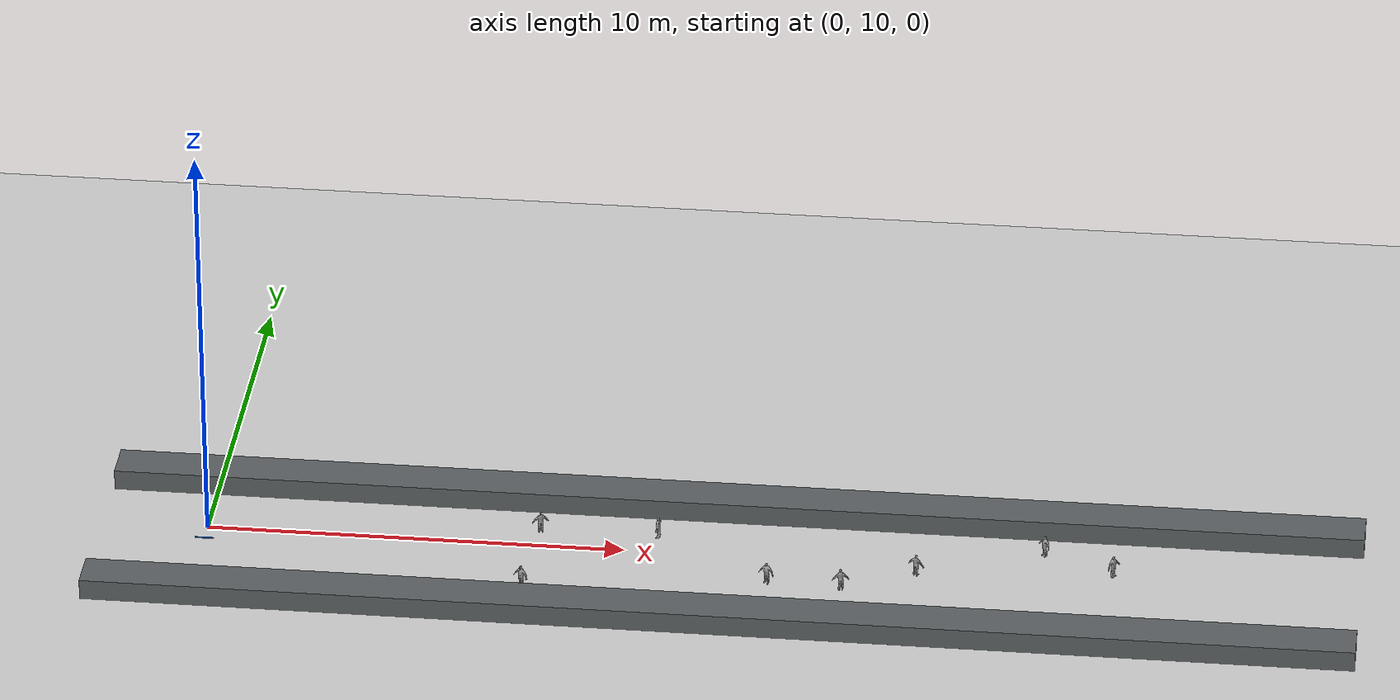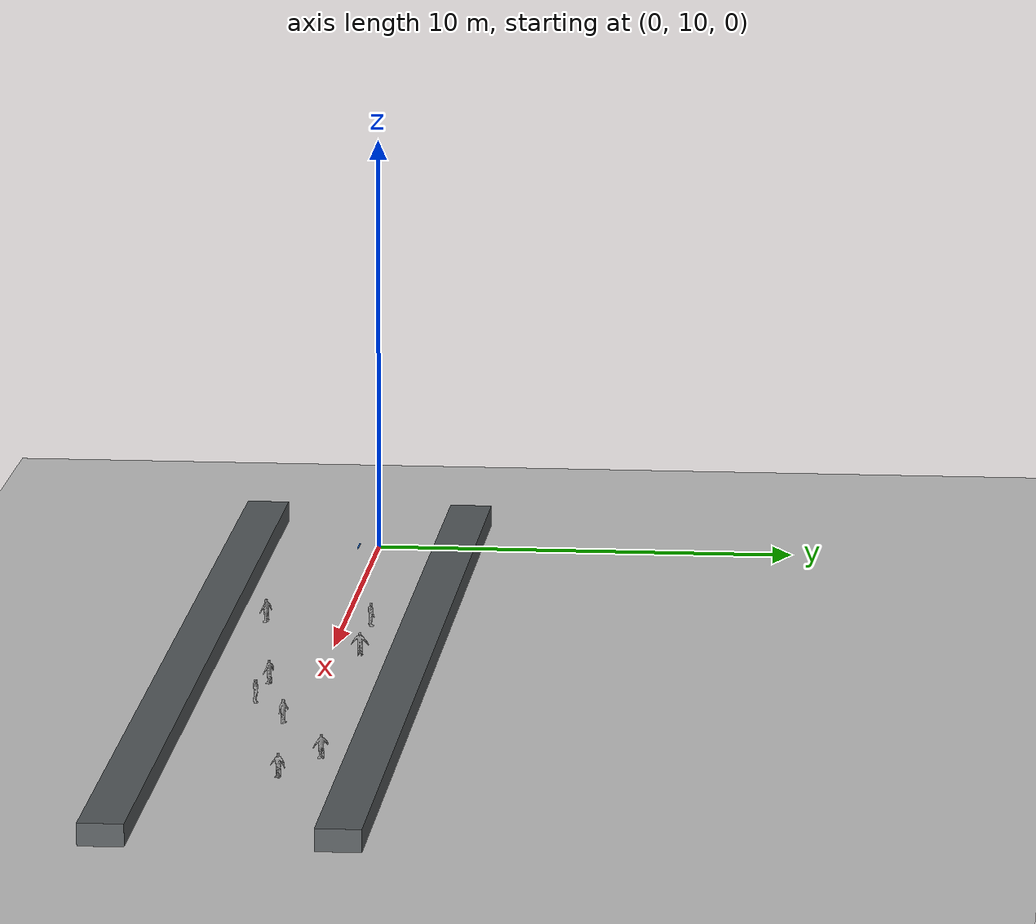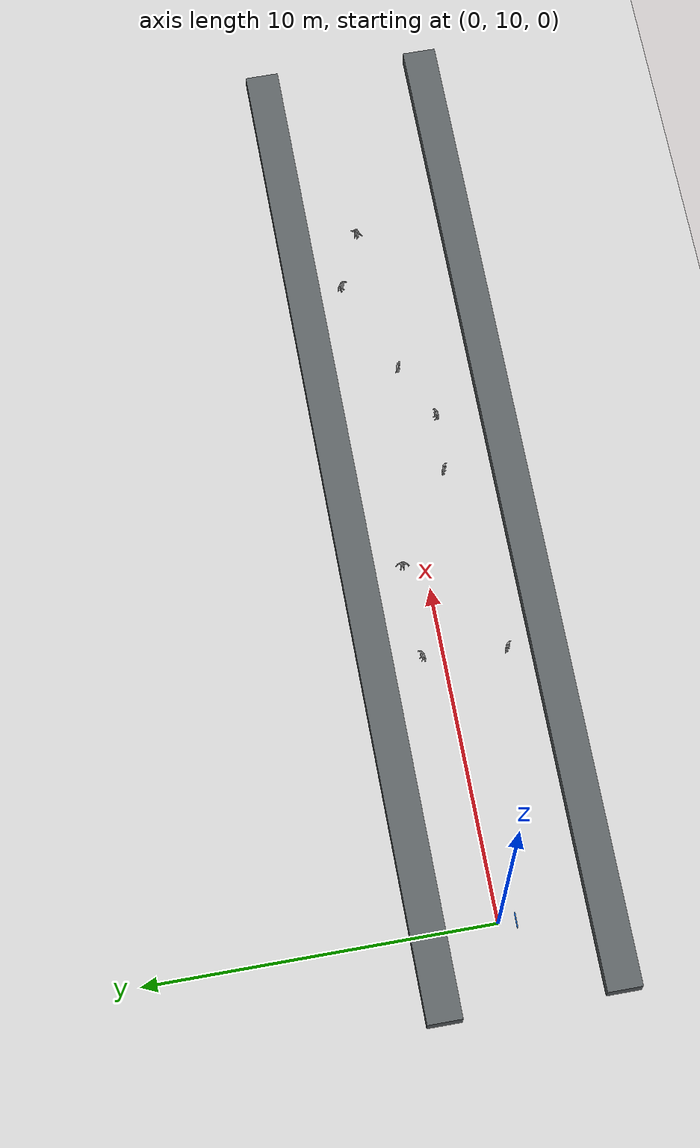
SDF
<?xml version="1.0" ?>
<sdf version="1.6">
  <world name="mppi_corridor_dynamic">
    <physics name="default_physics" type="ode">
      <max_step_size>0.001</max_step_size>
      <real_time_factor>1.0</real_time_factor>
      <real_time_update_rate>1000</real_time_update_rate>
    </physics>

    <plugin name="gazebo_ros_init" filename="libgazebo_ros_init.so">
      <publish_rate>100</publish_rate>
    </plugin>
    <plugin name="gazebo_ros_factory" filename="libgazebo_ros_factory.so"/>
    <plugin name="gazebo_ros_state" filename="libgazebo_ros_state.so"/>

    <scene>
      <ambient>0.45 0.45 0.45 1</ambient>
      <background>0.78 0.82 0.86 1</background>
      <shadows>true</shadows>
    </scene>

    <light name="sun" type="directional">
      <cast_shadows>true</cast_shadows>
      <pose>12.5 9.5 10 0 0 0</pose>
      <diffuse>0.8 0.8 0.8 1</diffuse>
      <specular>0.2 0.2 0.2 1</specular>
      <attenuation>
        <range>1000</range>
        <constant>0.9</constant>
        <linear>0.01</linear>
        <quadratic>0.001</quadratic>
      </attenuation>
      <direction>-0.5 0.2 -1</direction>
    </light>

    <model name="ground_plane">
      <static>true</static>
      <pose>13 9 0 0 0 0</pose>
      <link name="link">
        <collision name="collision">
          <geometry>
            <plane>
              <normal>0 0 1</normal>
              <size>30 8</size>
            </plane>
          </geometry>
          <surface>
            <friction>
              <ode>
                <mu>1.0</mu>
                <mu2>1.0</mu2>
              </ode>
            </friction>
          </surface>
        </collision>
        <visual name="visual">
          <geometry>
            <plane>
              <normal>0 0 1</normal>
              <size>30 8</size>
            </plane>
          </geometry>
          <material>
            <script>
              <uri>file://media/materials/scripts/gazebo.material</uri>
              <name>Gazebo/Grey</name>
            </script>
          </material>
        </visual>
      </link>
    </model>

    <model name="lower_boundary">
      <static>true</static>
      <pose>12.5 7.0 0.25 0 0 0</pose>
      <link name="link">
        <collision name="collision">
          <geometry><box><size>30.0 1.0 0.5</size></box></geometry>
        </collision>
        <visual name="visual">
          <geometry><box><size>30.0 1.0 0.5</size></box></geometry>
          <material><ambient>0.35 0.37 0.38 1</ambient><diffuse>0.35 0.37 0.38 1</diffuse></material>
        </visual>
      </link>
    </model>

    <model name="upper_boundary">
      <static>true</static>
      <pose>12.5 12.0 0.25 0 0 0</pose>
      <link name="link">
        <collision name="collision">
          <geometry><box><size>30.0 1.0 0.5</size></box></geometry>
        </collision>
        <visual name="visual">
          <geometry><box><size>30.0 1.0 0.5</size></box></geometry>
          <material><ambient>0.35 0.37 0.38 1</ambient><diffuse>0.35 0.37 0.38 1</diffuse></material>
        </visual>
      </link>
    </model>

    <model name="start_marker">
      <static>true</static>
      <pose>0.0 9.5 0.01 0 0 0</pose>
      <link name="link">
        <visual name="visual">
          <geometry><box><size>0.45 0.03 0.02</size></box></geometry>
          <material><ambient>0.1 0.45 0.9 1</ambient><diffuse>0.1 0.45 0.9 1</diffuse></material>
        </visual>
      </link>
    </model>

    <include>
      <uri>model://pedestrian_obstacle</uri>
      <name>cross_clone_10</name>
      <pose>15.2838 8.8094 0 0 0 -2.8841</pose>
    </include>
    <include>
      <uri>model://pedestrian_obstacle</uri>
      <name>cross_clone_11</name>
      <pose>16.9957 9.6309 0 0 0 2.7336</pose>
    </include>
    <include>
      <uri>model://pedestrian_obstacle</uri>
      <name>cross_clone_12</name>
      <pose>13.5170 8.8991 0 0 0 -0.4858</pose>
    </include>
    <include>
      <uri>model://pedestrian_obstacle</uri>
      <name>cross_clone_13</name>
      <pose>21.6455 10.0566 0 0 0 0.9454</pose>
    </include>
    <include>
      <uri>model://pedestrian_obstacle</uri>
      <name>cross_clone_14</name>
      <pose>19.9555 10.8021 0 0 0 -0.8935</pose>
    </include>
    <include>
      <uri>model://pedestrian_obstacle</uri>
      <name>cross_clone_15</name>
      <pose>10.7450 10.6708 0 0 0 -1.7143</pose>
    </include>
    <include>
      <uri>model://pedestrian_obstacle</uri>
      <name>cross_clone_16</name>
      <pose>7.9283 10.6295 0 0 0 -2.7736</pose>
    </include>
    <include>
      <uri>model://pedestrian_obstacle</uri>
      <name>cross_clone_17</name>
      <pose>7.7669 8.1561 0 0 0 -0.5997</pose>
    </include>

    <gui fullscreen="0">
      <camera name="user_camera">
        <pose>-2.0 9.5 6.0 0 1.05 0</pose>
        <view_controller>orbit</view_controller>
        <projection_type>perspective</projection_type>
      </camera>
    </gui>
  </world>
</sdf>

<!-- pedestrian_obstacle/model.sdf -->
<sdf version="1.6">
  <model name="pedestrian_obstacle">
    <static>false</static>
    <allow_auto_disable>false</allow_auto_disable>
    <link name="body">
      <kinematic>true</kinematic>
      <gravity>false</gravity>
      <inertial>
        <mass>35.0</mass>
        <inertia>
          <ixx>1.0</ixx>
          <iyy>1.0</iyy>
          <izz>1.0</izz>
          <ixy>0.0</ixy>
          <ixz>0.0</ixz>
          <iyz>0.0</iyz>
        </inertia>
      </inertial>

      <collision name="collision">
        <pose>0 0 0.8 0 0 0</pose>
        <geometry>
          <cylinder>
            <radius>0.10</radius>
            <length>1.6</length>
          </cylinder>
        </geometry>
        <surface>
          <friction>
            <ode>
              <mu>0.0</mu>
              <mu2>0.0</mu2>
            </ode>
          </friction>
          <contact>
            <ode>
              <kp>1000000.0</kp>
              <kd>1.0</kd>
              <max_vel>0.1</max_vel>
              <min_depth>0.001</min_depth>
            </ode>
          </contact>
        </surface>
      </collision>

      <visual name="randy">
        <pose>0 0 0 0 0 0</pose>
        <geometry>
          <mesh>
            <uri>model://pedestrian_obstacle/meshes/rescue_randy.dae</uri>
            <scale>0.3 0.3 0.3</scale>
          </mesh>
        </geometry>
        <material>
          <script>
            <uri>model://pedestrian_obstacle/materials/scripts</uri>
            <uri>model://pedestrian_obstacle/materials/textures</uri>
            <name>RescueRandy/Diffuse</name>
          </script>
          <pbr>
            <metal>
              <albedo_map>model://pedestrian_obstacle/materials/textures/rescue_randy_albedo.png</albedo_map>
              <normal_map>model://pedestrian_obstacle/materials/textures/rescue_randy_normal.png</normal_map>
              <metalness_map>model://pedestrian_obstacle/materials/textures/rescue_randy_metalness.png</metalness_map>
              <roughness_map>model://pedestrian_obstacle/materials/textures/rescue_randy_roughness.png</roughness_map>
            </metal>
          </pbr>
        </material>
      </visual>
    </link>
  </model>
</sdf>
